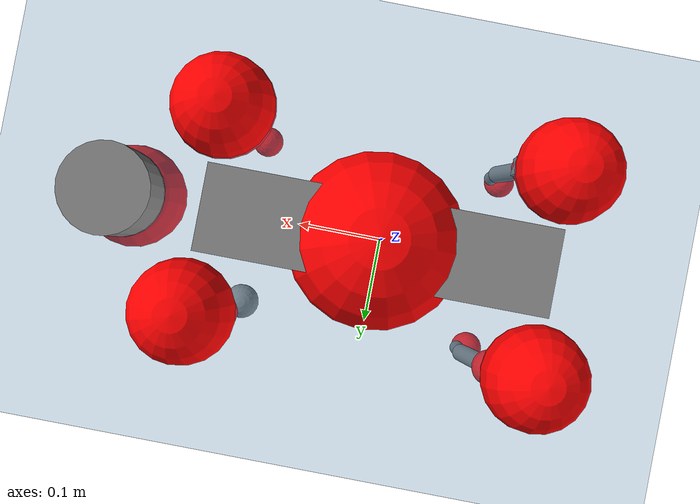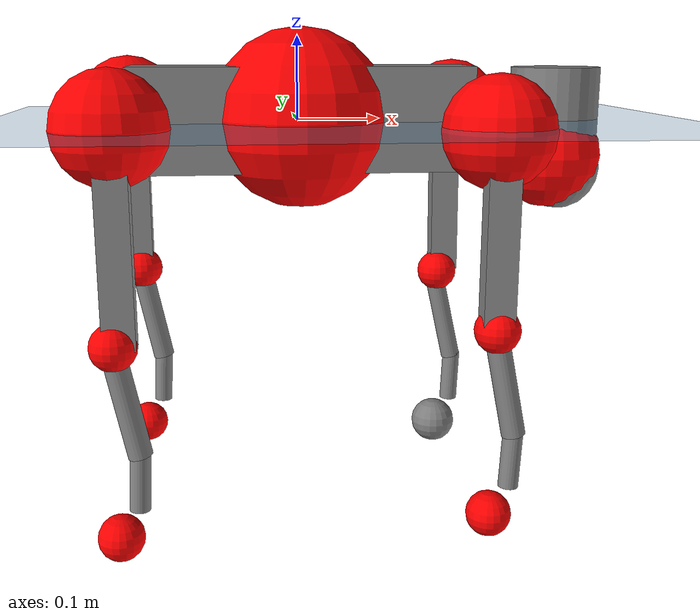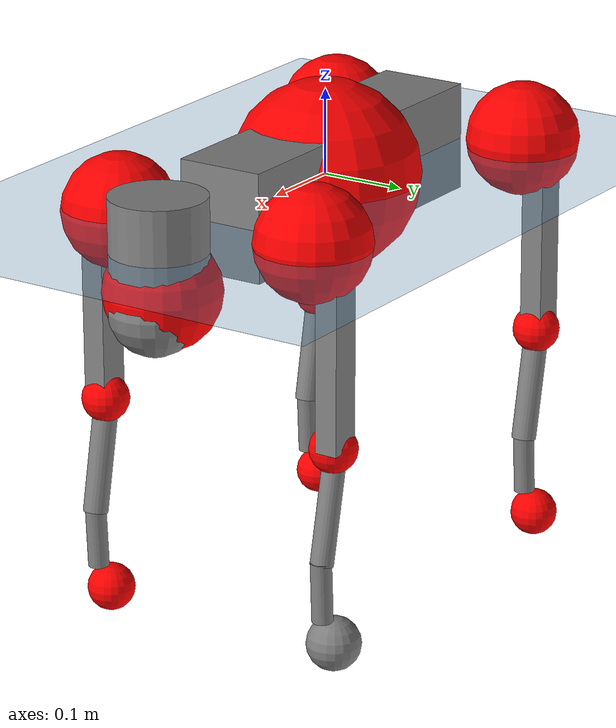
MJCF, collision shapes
<mujoco model="go2">
  <compiler angle="radian" assetdir="assets" balanceinertia="true" inertiafromgeom="false"/>

  <option timestep="0.005" density="1.2" viscosity="2e-05"/>

  <size nkey="1"/>

  <visual>
    <quality shadowsize="8192"/>
    <map shadowclip="0.5"/>
  </visual>

  <default>
    <default class="/">
      <geom contype="0" conaffinity="0" group="1" solref="-1000 -80"/>
      <site size="0.01 0.005 0.005" group="5"/>
      <general forcelimited="true" biastype="affine" gainprm="20" biasprm="0 -20 -0.5"/>
      <default class="go2">
        <joint armature="0.01" damping="0.01" frictionloss="0.2"/>
        <geom condim="1" margin="0.001"/>
        <default class="visual">
          <geom type="mesh" group="2"/>
        </default>
        <default class="collision">
          <geom group="3"/>
          <default class="foot">
            <geom size="0.022 0 0" condim="6" priority="1" friction="0.8 0.02 0.01" solimp="0.015 1 0.022"/>
          </default>
        </default>
        <default class="reward_collision_sphere">
          <geom group="5" rgba="1 0 0 1"/>
        </default>
      </default>
    </default>
  </default>

  <asset>
    <texture type="skybox" colorspace="auto" name="//unnamed_texture_0" builtin="gradient" rgb1="0.95 0.95 0.95" rgb2="0.95 0.95 0.95" width="100" height="600"/>
    <texture type="2d" colorspace="auto" name="texplane" builtin="checker" rgb1="0.345 0.575 0.748" rgb2="0.345 0.575 0.748" markrgb="1 1 1" width="512" height="512"/>
    <material name="MatPlane" class="/" texture="texplane" texuniform="true" texrepeat="2 2" specular="0.9"/>
    <material name="metal" class="/" rgba="0.9 0.95 0.95 1"/>
    <material name="black" class="/" rgba="0 0 0 1"/>
    <material name="white" class="/"/>
    <material name="gray" class="/" rgba="0.671705 0.692426 0.77427 1"/>
    <mesh name="base_0" class="/" file="base_0.obj"/>
    <mesh name="base_1" class="/" file="base_1.obj"/>
    <mesh name="base_2" class="/" file="base_2.obj"/>
    <mesh name="base_3" class="/" file="base_3.obj"/>
    <mesh name="base_4" class="/" file="base_4.obj"/>
    <mesh name="hip_0" class="/" file="hip_0.obj"/>
    <mesh name="hip_1" class="/" file="hip_1.obj"/>
    <mesh name="thigh_0" class="/" file="thigh_0.obj"/>
    <mesh name="thigh_1" class="/" file="thigh_1.obj"/>
    <mesh name="thigh_mirror_0" class="/" file="thigh_mirror_0.obj"/>
    <mesh name="thigh_mirror_1" class="/" file="thigh_mirror_1.obj"/>
    <mesh name="calf_0" class="/" file="calf_0.obj"/>
    <mesh name="calf_1" class="/" file="calf_1.obj"/>
    <mesh name="calf_mirror_0" class="/" file="calf_mirror_0.obj"/>
    <mesh name="calf_mirror_1" class="/" file="calf_mirror_1.obj"/>
    <mesh name="foot" class="/" file="foot.obj"/>
  </asset>

  <worldbody>
    <geom name="floor" class="/" size="100 100 0.125" type="plane" group="0" material="MatPlane"/>
    <light name="toplight_shadow" class="/" pos="0 0 5" dir="0.0990148 0.0990148 -0.990148" type="directional" ambient="0.04 0.04 0.04" diffuse="0.55 0.55 0.55" specular="0.12 0.12 0.12"/>
    <light name="toplight_fill" class="/" pos="0 0 5" dir="0.0990148 0.0990148 -0.990148" type="directional" castshadow="false" ambient="0.04 0.04 0.04" diffuse="0.3 0.3 0.3" specular="0.08 0.08 0.08"/>
    <body name="trunk" childclass="go2" pos="0.0039046 0.00204764 0.00152813" quat="0.999999 0.0013214 3.09684e-05 0.000658183">
      <inertial pos="0.0253939 -0.00203117 -0.00365088" quat="-0.0206654 0.724487 0.00231194 0.688975" mass="9.59251" diaginertia="0.175453 0.154484 0.0339792"/>
      <joint name="//unnamed_joint_0" type="free" armature="0" damping="0" frictionloss="0"/>
      <geom name="//unnamed_geom_1" class="visual" material="black" mesh="base_0"/>
      <geom name="//unnamed_geom_2" class="visual" material="black" mesh="base_1"/>
      <geom name="//unnamed_geom_3" class="visual" material="black" mesh="base_2"/>
      <geom name="//unnamed_geom_4" class="visual" material="white" mesh="base_3"/>
      <geom name="//unnamed_geom_5" class="visual" material="gray" mesh="base_4"/>
      <geom name="trunk_1" class="collision" size="0.207748 0.0516332 0.0629538" type="box"/>
      <geom name="trunk_2" class="collision" size="0.0552227 0.0497004" pos="0.320967 0 0.0109171" type="cylinder"/>
      <geom name="trunk_3" class="collision" size="0.0519093" pos="0.329977 0 -0.0655028"/>
      <geom name="//unnamed_geom_9" class="reward_collision_sphere" size="0.110445"/>
      <geom name="//unnamed_geom_10" class="reward_collision_sphere" size="0.0662672" pos="0.315336 0 -0.0491271"/>
      <site name="imu" pos="-0.0391497 0.0447771 0.0458941" size="0.0110445"/>
      <camera name="track" pos="0 -2.1909 0" quat="0.707107 0.707107 0 0" mode="trackcom"/>
      <camera name="ego_camera" pos="0.351374 0 0.0491271" quat="-0.5 -0.5 0.5 0.5"/>
      <body name="FL_hip" pos="0.21756 0.0526043 0.00170244" quat="0.999991 -0.000357523 -0.00410966 0.00109844">
        <inertial pos="-0.00442314 0.00444256 -0.00122661" quat="0.507976 0.492422 0.514224 0.484824" mass="0.83093" diaginertia="0.00145363 0.00085412 0.000663138"/>
        <joint name="FL_hip_joint" pos="0 0 0" axis="0.999886 0.00589719 0.0138829" range="-1.18559 1.05469" armature="0.00839977" damping="0.0297411" frictionloss="0.198843"/>
        <geom name="//unnamed_geom_11" class="visual" material="metal" mesh="hip_0"/>
        <geom name="//unnamed_geom_12" class="visual" material="gray" mesh="hip_1"/>
        <geom name="//unnamed_geom_13" class="collision" size="0.0508049 0.0220891" pos="0 0.0876358 0" quat="0.707107 0.707107 0 0" type="cylinder"/>
        <geom name="//unnamed_geom_14" class="reward_collision_sphere" size="0.0662672" pos="0 0.0766814 0"/>
        <body name="FL_thigh" pos="-0.00189988 0.104049 0.000804253" quat="1 -0.000112529 -0.000120112 -0.000276289">
          <inertial pos="-0.0055424 -0.0173314 -0.0267022" quat="0.830077 0.0871344 -0.0169544 0.550539" mass="1.55193" diaginertia="0.0112938 0.00966602 0.00142527"/>
          <joint name="FL_thigh_joint" pos="0 0 0" axis="0.00635929 0.999905 -0.0122187" range="-1.57874 3.32191" armature="0.0121516" damping="0.0523757" frictionloss="0.219683"/>
          <geom name="//unnamed_geom_15" class="visual" material="metal" mesh="thigh_0"/>
          <geom name="//unnamed_geom_16" class="visual" material="gray" mesh="thigh_1"/>
          <geom name="//unnamed_geom_17" class="collision" size="0.117624 0.0135296 0.0187757" pos="0 0 -0.116267" quat="0.707107 0 0.707107 0" type="box"/>
          <body name="FL_calf" pos="-0.00932976 -0.00774616 -0.236303" quat="1 -0.000239649 -8.60824e-05 -0.00021994">
            <inertial pos="0.00627827 0.00148646 -0.157775" quat="0.711079 0.0014841 -0.00194521 0.703108" mass="0.301221" diaginertia="0.00261576 0.00230154 8.30333e-05"/>
            <joint name="FL_calf_joint" pos="0 0 0" axis="-0.00120096 0.999991 -0.00413885" stiffness="0.0441398" range="-2.79031 -0.713499" armature="0.0113832" damping="0" frictionloss="0.197526"/>
            <geom name="//unnamed_geom_18" class="visual" material="gray" mesh="calf_0"/>
            <geom name="//unnamed_geom_19" class="visual" material="black" mesh="calf_1"/>
            <geom name="FL_calf0" class="collision" size="0.0132534 0.0662672" pos="0.0090096 0 -0.0655028" quat="0.994493 0 -0.104807 0" type="cylinder"/>
            <geom name="//unnamed_geom_21" class="collision" size="0.012149 0.0358947" pos="0.022524 0 -0.161573" quat="0.999688 0 0.0249974 0" type="cylinder"/>
            <geom name="//unnamed_geom_22" class="visual" pos="0 0 -0.232535" quat="1 0 0 0" material="black" mesh="foot"/>
            <geom name="FL_foot" class="foot" size="0.0313748" pos="-0.0022524 0 -0.232535"/>
            <geom name="//unnamed_geom_24" class="reward_collision_sphere" size="0.0276113"/>
            <geom name="//unnamed_geom_25" class="reward_collision_sphere" size="0.0276113" pos="-0.0022524 0 -0.232535"/>
            <site name="FL_foot" class="foot" pos="-0.0022524 0 -0.232535" size="0.0110445"/>
          </body>
        </body>
      </body>
      <body name="FR_hip" pos="0.216409 -0.0524563 -0.00750508" quat="1 0.000677253 7.73715e-05 -0.000711159">
        <inertial pos="-0.00714783 0.00136575 0.00171496" quat="0.488395 0.495508 0.529678 0.485164" mass="0.831317" diaginertia="0.00148112 0.000845626 0.000688991"/>
        <joint name="FR_hip_joint" pos="0 0 0" axis="0.999978 0.00189096 0.00643064" stiffness="0.014118" range="-1.13133 1.09159" armature="0.0109351" damping="0" frictionloss="0.224307"/>
        <geom name="//unnamed_geom_26" class="visual" pos="0 3.25415e-11 1.39577e-09" quat="4.63268e-05 1 0 0" material="metal" mesh="hip_0"/>
        <geom name="//unnamed_geom_27" class="visual" pos="0 5.27537e-11 -3.45228e-09" quat="4.63268e-05 1 0 0" material="gray" mesh="hip_1"/>
        <geom name="//unnamed_geom_28" class="collision" size="0.0508049 0.0220891" pos="0 -0.0876358 0" quat="0.707107 0.707107 0 0" type="cylinder"/>
        <geom name="//unnamed_geom_29" class="reward_collision_sphere" size="0.0662672" pos="0 -0.0766814 0"/>
        <body name="FR_thigh" pos="-0.0013058 -0.104658 0.00500925" quat="1 0.00029794 -2.40745e-05 -6.50528e-05">
          <inertial pos="-0.00400378 0.0243198 -0.0279741" quat="0.537589 -0.0147775 0.0429664 0.841982" mass="1.41847" diaginertia="0.00999072 0.00835802 0.00123574"/>
          <joint name="FR_thigh_joint" pos="0 0 0" axis="0.00862236 -0.99996 0.00230555" range="-3.34214 1.47193" armature="0.0135738" damping="0.0198566" frictionloss="0.237097"/>
          <geom name="//unnamed_geom_30" class="visual" material="metal" mesh="thigh_mirror_0"/>
          <geom name="//unnamed_geom_31" class="visual" material="gray" mesh="thigh_mirror_1"/>
          <geom name="//unnamed_geom_32" class="collision" size="0.117624 0.0135296 0.0187757" pos="0 0 -0.116267" quat="0.707107 0 0.707107 0" type="box"/>
          <body name="FR_calf" pos="0.00189985 0.00263686 -0.232085" quat="1 -5.50531e-05 -0.0001879 3.17638e-05">
            <inertial pos="0.00882392 0.00186643 -0.163665" quat="0.70782 -0.00665606 -0.0055766 0.706339" mass="0.384241" diaginertia="0.00299442 0.00229474 9.97345e-05"/>
            <joint name="FR_calf_joint" pos="0 0 0" axis="-0.00133925 -0.999996 0.00239747" stiffness="0.0107884" range="0.860709 2.75612" armature="0.00857042" damping="0.00397213" frictionloss="0.217126"/>
            <geom name="//unnamed_geom_33" class="visual" material="gray" mesh="calf_mirror_0"/>
            <geom name="//unnamed_geom_34" class="visual" material="black" mesh="calf_mirror_1"/>
            <geom name="FR_calf0" class="collision" size="0.0143579 0.0662672" pos="0.011262 0 -0.0655028" quat="0.995004 0 -0.0998334 0" type="cylinder"/>
            <geom name="//unnamed_geom_36" class="collision" size="0.012149 0.0358947" pos="0.022524 0 -0.161573" quat="0.999688 0 0.0249974 0" type="cylinder"/>
            <geom name="//unnamed_geom_37" class="visual" pos="0 0 -0.232535" quat="1 0 0 0" material="black" mesh="foot"/>
            <geom name="FR_foot" class="foot" size="0.0203432" pos="-0.0022524 0 -0.232535"/>
            <geom name="//unnamed_geom_39" class="reward_collision_sphere" size="0.0276113"/>
            <geom name="//unnamed_geom_40" class="reward_collision_sphere" size="0.0276113" pos="-0.0022524 0 -0.232535"/>
            <site name="FR_foot" class="foot" pos="-0.0022524 0 -0.232535" size="0.0110445"/>
          </body>
        </body>
      </body>
      <body name="RL_hip" pos="-0.219954 0.0519742 0.00736461" quat="1 -0.000278595 -0.000603808 0.000115196">
        <inertial pos="0.00676856 -1.13981e-05 0.00718213" quat="0.509904 0.503562 0.494476 0.491851" mass="0.813085" diaginertia="0.00144182 0.000953876 0.000743641"/>
        <joint name="RL_hip_joint" pos="0 0 0" axis="-0.999954 -0.000305323 -0.00956755" stiffness="0.0045247" range="-1.21838 0.913811" armature="0.0107525" damping="0.0259741" frictionloss="0.147146"/>
        <geom name="//unnamed_geom_41" class="visual" pos="-3.00439e-10 0 -5.88929e-08" quat="4.63268e-05 0 1 0" material="metal" mesh="hip_0"/>
        <geom name="//unnamed_geom_42" class="visual" pos="-4.87047e-10 0 -5.22296e-08" quat="4.63268e-05 0 1 0" material="gray" mesh="hip_1"/>
        <geom name="//unnamed_geom_43" class="collision" size="0.0508049 0.0220891" pos="0 0.0876358 0" quat="0.707107 0.707107 0 0" type="cylinder"/>
        <geom name="//unnamed_geom_44" class="reward_collision_sphere" size="0.0662672" pos="0 0.0766814 0"/>
        <body name="RL_thigh" pos="0.00139565 0.102692 -0.000200136" quat="1 -4.14088e-05 -1.66414e-05 -7.20134e-06">
          <inertial pos="0.00214407 -0.0226475 -0.0268292" quat="0.813489 0.087469 -0.0378706 0.573716" mass="1.50629" diaginertia="0.0116977 0.00932343 0.00146941"/>
          <joint name="RL_thigh_joint" pos="0 0 0" axis="0.024423 0.999528 0.0186253" range="-0.390831 4.50635" armature="0.0111155" damping="0.00909587" frictionloss="0.210395"/>
          <geom name="//unnamed_geom_45" class="visual" material="metal" mesh="thigh_0"/>
          <geom name="//unnamed_geom_46" class="visual" material="gray" mesh="thigh_1"/>
          <geom name="//unnamed_geom_47" class="collision" size="0.117624 0.0135296 0.0187757" pos="0 0 -0.116267" quat="0.707107 0 0.707107 0" type="box"/>
          <body name="RL_calf" pos="0.00308877 -0.000875136 -0.228245" quat="1 -0.000235738 -0.000423382 0.000598477">
            <inertial pos="0.00485923 0.00191232 -0.157706" quat="0.709459 -0.00455479 -0.0290881 0.704132" mass="0.342664" diaginertia="0.00271249 0.00229734 8.21573e-05"/>
            <joint name="RL_calf_joint" pos="0 0 0" axis="-0.00541031 0.999958 0.00736031" stiffness="0.0452084" range="-2.71614 -0.836524" armature="0.0118075" damping="0.00583725" frictionloss="0.194487"/>
            <geom name="//unnamed_geom_48" class="visual" material="gray" mesh="calf_0"/>
            <geom name="//unnamed_geom_49" class="visual" material="black" mesh="calf_1"/>
            <geom name="RL_calf0" class="collision" size="0.0143579 0.0662672" pos="0.011262 0 -0.0655028" quat="0.995004 0 -0.0998334 0" type="cylinder"/>
            <geom name="//unnamed_geom_51" class="collision" size="0.012149 0.0358947" pos="0.022524 0 -0.161573" quat="0.999688 0 0.0249974 0" type="cylinder"/>
            <geom name="//unnamed_geom_52" class="visual" pos="0 0 -0.232535" quat="1 0 0 0" material="black" mesh="foot"/>
            <geom name="RL_foot" class="foot" size="0.0238297" pos="-0.0022524 0 -0.232535"/>
            <geom name="//unnamed_geom_54" class="reward_collision_sphere" size="0.0276113"/>
            <geom name="//unnamed_geom_55" class="reward_collision_sphere" size="0.0276113" pos="-0.0022524 0 -0.232535"/>
            <site name="RL_foot" class="foot" pos="-0.0022524 0 -0.232535" size="0.0110445"/>
          </body>
        </body>
      </body>
      <body name="RR_hip" pos="-0.217625 -0.0517358 -0.000323586" quat="1 5.44698e-06 -2.0372e-05 -3.66302e-05">
        <inertial pos="0.00743153 -0.00850831 0.00379613" quat="0.498819 0.495972 0.498563 0.506583" mass="0.998442" diaginertia="0.00172645 0.00101573 0.000815952"/>
        <joint name="RR_hip_joint" pos="0 0 0" axis="-0.999999 -0.00111453 -0.000694354" range="-1.05086 1.15124" armature="0.0120216" damping="0.0432188" frictionloss="0.221671"/>
        <geom name="//unnamed_geom_56" class="visual" pos="2.99374e-10 3.25415e-11 -6.02886e-08" quat="2.14617e-09 4.63268e-05 4.63268e-05 -1" material="metal" mesh="hip_0"/>
        <geom name="//unnamed_geom_57" class="visual" pos="4.8968e-10 5.27537e-11 -4.87773e-08" quat="2.14617e-09 4.63268e-05 4.63268e-05 -1" material="gray" mesh="hip_1"/>
        <geom name="//unnamed_geom_58" class="collision" size="0.0508049 0.0220891" pos="0 -0.0876358 0" quat="0.707107 0.707107 0 0" type="cylinder"/>
        <geom name="//unnamed_geom_59" class="reward_collision_sphere" size="0.0662672" pos="0 -0.0766814 0"/>
        <body name="RR_thigh" pos="0.00231169 -0.105365 -0.00745461" quat="1 -0.000584273 -7.82172e-05 0.000140931">
          <inertial pos="-0.00136472 0.020466 -0.0355788" quat="0.550431 -0.0196884 0.081777 0.830632" mass="1.76584" diaginertia="0.0113613 0.00956887 0.00135992"/>
          <joint name="RR_thigh_joint" pos="0 0 0" axis="0.0034094 -0.999941 0.0103294" range="-4.39007 0.39203" armature="0.0117405" damping="0.0149393" frictionloss="0.281221"/>
          <geom name="//unnamed_geom_60" class="visual" material="metal" mesh="thigh_mirror_0"/>
          <geom name="//unnamed_geom_61" class="visual" material="gray" mesh="thigh_mirror_1"/>
          <geom name="//unnamed_geom_62" class="collision" size="0.117624 0.0135296 0.0187757" pos="0 0 -0.116267" quat="0.707107 0 0.707107 0" type="box"/>
          <body name="RR_calf" pos="-0.00766708 -0.00207777 -0.231515" quat="1 -0.00010178 -0.000523145 -0.000558082">
            <inertial pos="0.00724482 0.000980609 -0.154208" quat="0.708228 -0.00962276 -0.0037987 0.705908" mass="0.357501" diaginertia="0.0027584 0.00234147 8.80458e-05"/>
            <joint name="RR_calf_joint" pos="0 0 0" axis="-0.00358121 -0.999859 0.0163825" stiffness="0.0229848" range="0.816639 2.67649" armature="0.011594" damping="0.0500163" frictionloss="0.207999"/>
            <geom name="//unnamed_geom_63" class="visual" material="gray" mesh="calf_mirror_0"/>
            <geom name="//unnamed_geom_64" class="visual" material="black" mesh="calf_mirror_1"/>
            <geom name="RR_calf0" class="collision" size="0.0143579 0.0662672" pos="0.011262 0 -0.0655028" quat="0.995004 0 -0.0998334 0" type="cylinder"/>
            <geom name="//unnamed_geom_66" class="collision" size="0.012149 0.0358947" pos="0.022524 0 -0.161573" quat="0.999688 0 0.0249974 0" type="cylinder"/>
            <geom name="//unnamed_geom_67" class="visual" pos="0 0 -0.232535" quat="1 0 0 0" material="black" mesh="foot"/>
            <geom name="RR_foot" class="foot" size="0.0216853" pos="-0.0022524 0 -0.232535"/>
            <geom name="//unnamed_geom_69" class="reward_collision_sphere" size="0.0276113"/>
            <geom name="//unnamed_geom_70" class="reward_collision_sphere" size="0.0276113" pos="-0.0022524 0 -0.232535"/>
            <site name="RR_foot" class="foot" pos="-0.0022524 0 -0.232535" size="0.0110445"/>
          </body>
        </body>
      </body>
    </body>
  </worldbody>

  <contact>
    <pair class="/" geom1="floor" geom2="FL_foot" name="//unnamed_contact_0"/>
    <pair class="/" geom1="floor" geom2="FR_foot" name="//unnamed_contact_1"/>
    <pair class="/" geom1="floor" geom2="RL_foot" name="//unnamed_contact_2"/>
    <pair class="/" geom1="floor" geom2="RR_foot" name="//unnamed_contact_3"/>
  </contact>

  <actuator>
    <general name="FL_hip" class="/" joint="FL_hip_joint" forcerange="-28.0113 28.0113" gainprm="21.9837" biasprm="0 -21.9837 -0.467399"/>
    <general name="FL_thigh" class="/" joint="FL_thigh_joint" forcerange="-20.4819 20.4819" gainprm="21.9837" biasprm="0 -21.9837 -0.467399"/>
    <general name="FL_calf" class="/" joint="FL_calf_joint" forcerange="-62.9691 62.9691" gainprm="21.9837" biasprm="0 -21.9837 -0.467399"/>
    <general name="FR_hip" class="/" joint="FR_hip_joint" forcerange="-28.2928 28.2928" gainprm="21.9837" biasprm="0 -21.9837 -0.467399"/>
    <general name="FR_thigh" class="/" joint="FR_thigh_joint" forcerange="-23.6032 23.6032" gainprm="21.9837" biasprm="0 -21.9837 -0.467399"/>
    <general name="FR_calf" class="/" joint="FR_calf_joint" forcerange="-32.2125 32.2125" gainprm="21.9837" biasprm="0 -21.9837 -0.467399"/>
    <general name="RL_hip" class="/" joint="RL_hip_joint" forcerange="-19.2174 19.2174" gainprm="21.9837" biasprm="0 -21.9837 -0.467399"/>
    <general name="RL_thigh" class="/" joint="RL_thigh_joint" forcerange="-24.926 24.926" gainprm="21.9837" biasprm="0 -21.9837 -0.467399"/>
    <general name="RL_calf" class="/" joint="RL_calf_joint" forcerange="-54.3971 54.3971" gainprm="21.9837" biasprm="0 -21.9837 -0.467399"/>
    <general name="RR_hip" class="/" joint="RR_hip_joint" forcerange="-24.3892 24.3892" gainprm="21.9837" biasprm="0 -21.9837 -0.467399"/>
    <general name="RR_thigh" class="/" joint="RR_thigh_joint" forcerange="-34.6352 34.6352" gainprm="21.9837" biasprm="0 -21.9837 -0.467399"/>
    <general name="RR_calf" class="/" joint="RR_calf_joint" forcerange="-59.7471 59.7471" gainprm="21.9837" biasprm="0 -21.9837 -0.467399"/>
  </actuator>

  <sensor>
    <gyro site="imu" name="imu_angular_velocity"/>
    <velocimeter site="imu" name="imu_linear_velocity"/>
    <framelinvel objtype="site" objname="FL_foot" name="FL_foot_global_linear_velocity"/>
    <framelinvel objtype="site" objname="FR_foot" name="FR_foot_global_linear_velocity"/>
    <framelinvel objtype="site" objname="RL_foot" name="RL_foot_global_linear_velocity"/>
    <framelinvel objtype="site" objname="RR_foot" name="RR_foot_global_linear_velocity"/>
  </sensor>

  <keyframe>
    <key name="home" qpos="0 0 0.325 1 0 0 0 0.1 0.8 -1.5 -0.1 -0.8 1.5 -0.1 0.8 -1.5 0.1 -0.8 1.5"/>
  </keyframe>
</mujoco>
